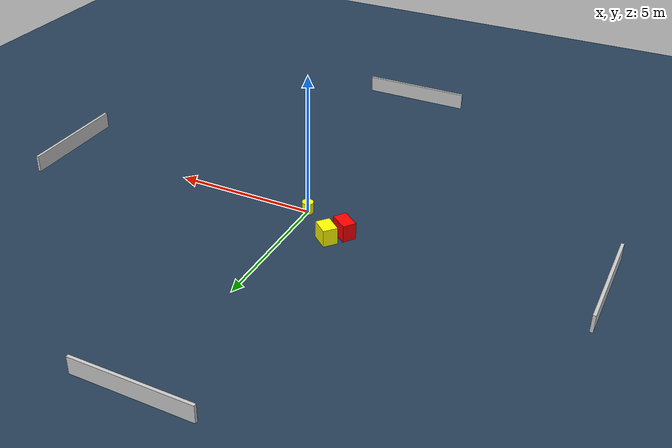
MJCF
<?xml version="1.0" ?>
<mujoco model="generated_environment">
  <option timestep="0.01" integrator="RK4" cone="elliptic"/>
  <default>
    <geom density="1"/>
  </default>
  <asset>
    <texture builtin="gradient" height="3072" name="skybox" rgb1="0.3 0.5 0.7" rgb2="0 0 0" type="skybox" width="512"/>
    <texture builtin="checker" height="300" name="groundplane" rgb1="0.2 0.3 0.4" rgb2="0.1 0.2 0.3" type="2d" width="300"/>
    <material name="groundplane" reflectance="0.2" texrepeat="5 5" texture="groundplane"/>
  </asset>
  <worldbody>
    <light dir="0 0 -1" directional="true" pos="0 0 1.5"/>
    <geom condim="3" friction="0.5 0.005 0.001" material="groundplane" name="floor" pos="0 0 0" size="0 0 0.05" type="plane"/>
    <body name="walls">
      <geom name="wall_1" condim="4" pos="-10.0 0.0 0.3" rgba="0.800000011920929 0.800000011920929 0.800000011920929 1.0" size="0.05 2.0 0.3" type="box"/>
      <geom name="wall_2" condim="4" pos="10.0 0.0 0.3" rgba="0.800000011920929 0.800000011920929 0.800000011920929 1.0" size="0.05 2.0 0.3" type="box"/>
      <geom name="wall_3" condim="4" pos="0.0 -10.0 0.3" rgba="0.800000011920929 0.800000011920929 0.800000011920929 1.0" size="2.0 0.05 0.3" type="box"/>
      <geom name="wall_4" condim="4" pos="0.0 10.0 0.3" rgba="0.800000011920929 0.800000011920929 0.800000011920929 1.0" size="2.0 0.05 0.3" type="box"/>
    </body>
    <body name="robot">
      <joint name="joint_x" type="slide" pos="0 0 0" axis="1 0 0"/>
      <joint name="joint_y" type="slide" pos="0 0 0" axis="0 1 0"/>
      <geom name="robot" type="cylinder" pos="0.0 0.0 0.2" size="0.2 0.2 0.0" mass="5.0" friction="1.0 0.005 0.0001" condim="4" rgba="1.0 1.0 0.0 1.0"/>
    </body>
    <body name="obstacle_1_movable">
      <geom name="obstacle_1_movable" condim="4" pos="-1.31849089067098 1.2584339492405352 0.3" euler="0 0 49.5957883217574" friction="0.0 0.005 0.001" rgba="1.0 1.0 0.0 1.0" size="0.2512025458661518 0.32159764165302396 0.3" type="box" mass="0.1"/>
      <joint type="free"/>
    </body>
    <body name="obstacle_2_static">
      <geom name="obstacle_2_static" condim="4" pos="-1.7107079723141296 0.727919581228046 0.3" euler="0 0 143.23961601945913" friction="0.0 0.005 0.001" rgba="1.0 0.0 0.0 1.0" size="0.34972898060041335 0.2368128574020542 0.3" type="box"/>
    </body>
  </worldbody>
  <actuator>
    <motor name="actuator_x" joint="joint_x" gear="1" ctrlrange="-1 1"/>
    <motor name="actuator_y" joint="joint_y" gear="1" ctrlrange="-1 1"/>
  </actuator>
</mujoco>
